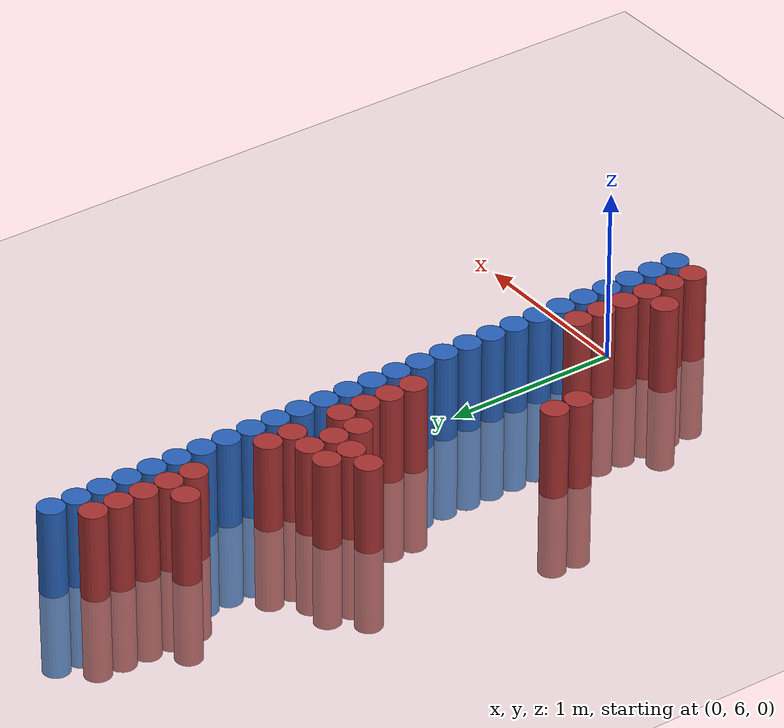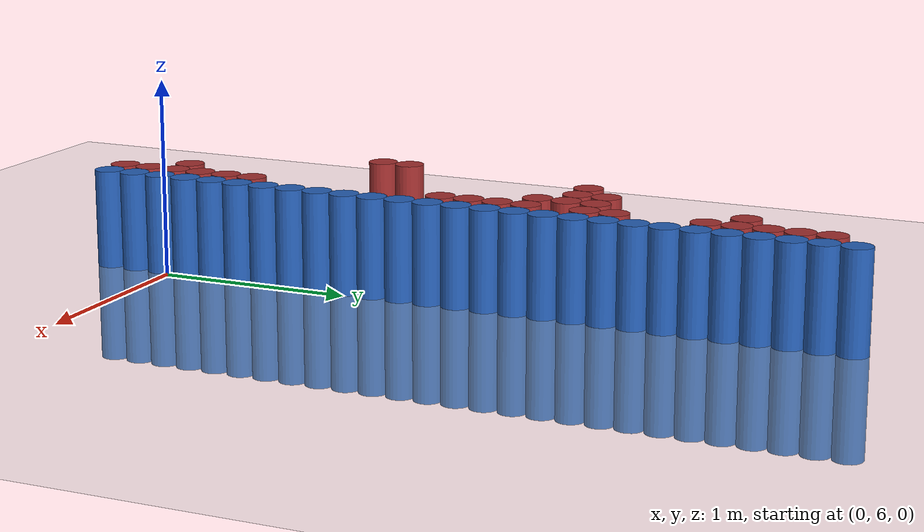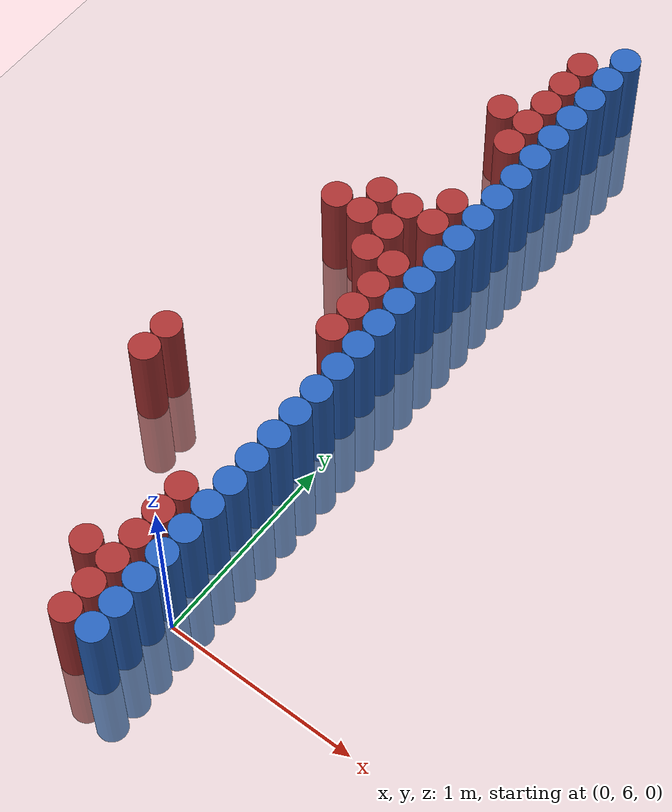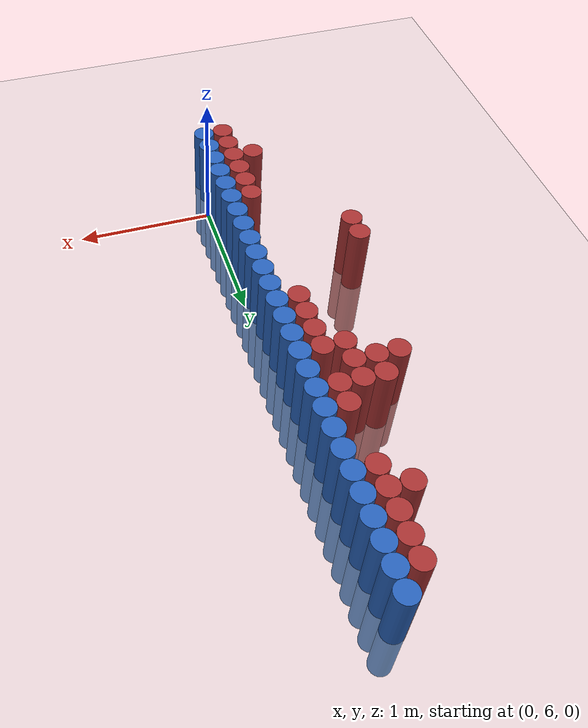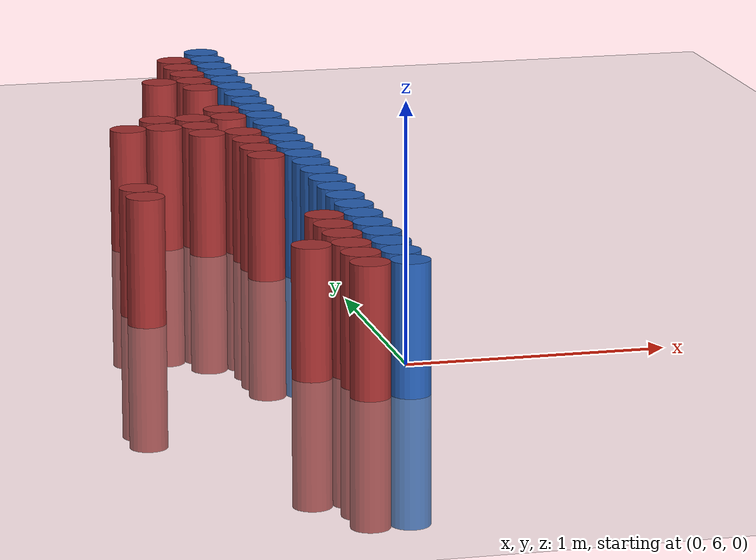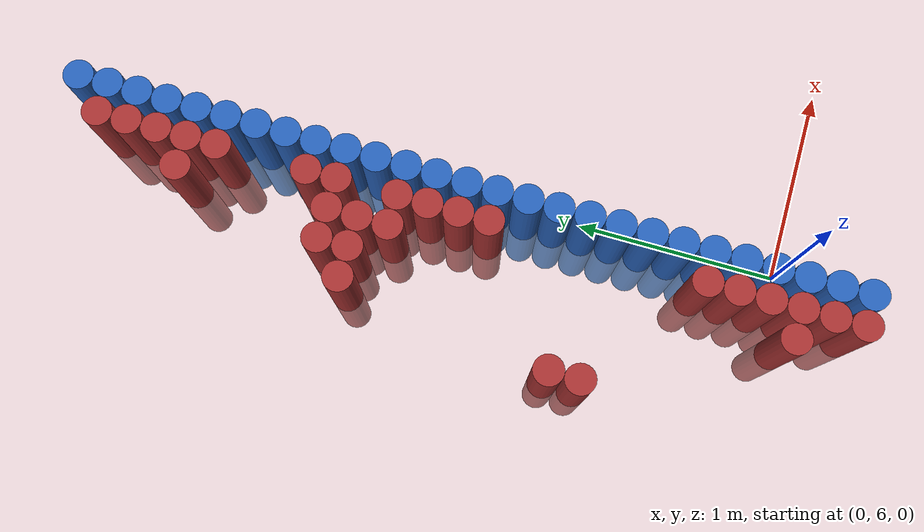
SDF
<sdf version="1.7">
 <world name="default">
  <model name="ground_plane">
   <static>1</static>
   <link name="link">
    <collision name="collision">
     <geometry><plane><normal>0 0 1</normal><size>100 100</size></plane></geometry>
     <surface><friction><ode><mu>100</mu><mu2>50</mu2></ode></friction></surface>
    </collision>
    <visual name="visual">
     <cast_shadows>0</cast_shadows>
     <geometry><plane><normal>0 0 1</normal><size>100 100</size></plane></geometry>
     <material>
      <script><uri>file://media/materials/scripts/gazebo.material</uri><name>Gazebo/Grey</name></script>
     </material>
    </visual>
   </link>
  </model>
  <model name="unit_cylinder_180">
   <static>1</static>
   <pose>-0.825 6.825 0 0 -0 0</pose>
   <link name="link">
    <inertial>
     <mass>1</mass>
     <inertia><ixx>0.145833</ixx><ixy>0</ixy><ixz>0</ixz><iyy>0.145833</iyy><iyz>0</iyz><izz>0.125</izz></inertia>
    </inertial>
    <collision name="collision">
     <geometry><cylinder><radius>0.075</radius><length>1</length></cylinder></geometry>
    </collision>
    <visual name="visual">
     <geometry><cylinder><radius>0.075</radius><length>1</length></cylinder></geometry>
     <material><ambient>0.648 0.192 0.192 1</ambient><diffuse>0.648 0.192 0.192 1</diffuse></material>
     <material>
      <script><name>Gazebo/Grey</name><uri>file://media/materials/scripts/gazebo.material</uri></script>
     </material>
    </visual>
   </link>
  </model>
  <model name="unit_cylinder_181">
   <static>1</static>
   <pose>-0.825 6.975 0 0 -0 0</pose>
   <link name="link">
    <inertial>
     <mass>1</mass>
     <inertia><ixx>0.145833</ixx><ixy>0</ixy><ixz>0</ixz><iyy>0.145833</iyy><iyz>0</iyz><izz>0.125</izz></inertia>
    </inertial>
    <collision name="collision">
     <geometry><cylinder><radius>0.075</radius><length>1</length></cylinder></geometry>
    </collision>
    <visual name="visual">
     <geometry><cylinder><radius>0.075</radius><length>1</length></cylinder></geometry>
     <material><ambient>0.648 0.192 0.192 1</ambient><diffuse>0.648 0.192 0.192 1</diffuse></material>
     <material>
      <script><name>Gazebo/Grey</name><uri>file://media/materials/scripts/gazebo.material</uri></script>
     </material>
    </visual>
   </link>
  </model>
  <model name="unit_cylinder_182">
   <static>1</static>
   <pose>-0.675 8.025 0 0 -0 0</pose>
   <link name="link">
    <inertial>
     <mass>1</mass>
     <inertia><ixx>0.145833</ixx><ixy>0</ixy><ixz>0</ixz><iyy>0.145833</iyy><iyz>0</iyz><izz>0.125</izz></inertia>
    </inertial>
    <collision name="collision">
     <geometry><cylinder><radius>0.075</radius><length>1</length></cylinder></geometry>
    </collision>
    <visual name="visual">
     <geometry><cylinder><radius>0.075</radius><length>1</length></cylinder></geometry>
     <material><ambient>0.648 0.192 0.192 1</ambient><diffuse>0.648 0.192 0.192 1</diffuse></material>
     <material>
      <script><name>Gazebo/Grey</name><uri>file://media/materials/scripts/gazebo.material</uri></script>
     </material>
    </visual>
   </link>
  </model>
  <model name="unit_cylinder_183">
   <static>1</static>
   <pose>-0.525 8.025 0 0 -0 0</pose>
   <link name="link">
    <inertial>
     <mass>1</mass>
     <inertia><ixx>0.145833</ixx><ixy>0</ixy><ixz>0</ixz><iyy>0.145833</iyy><iyz>0</iyz><izz>0.125</izz></inertia>
    </inertial>
    <collision name="collision">
     <geometry><cylinder><radius>0.075</radius><length>1</length></cylinder></geometry>
    </collision>
    <visual name="visual">
     <geometry><cylinder><radius>0.075</radius><length>1</length></cylinder></geometry>
     <material><ambient>0.648 0.192 0.192 1</ambient><diffuse>0.648 0.192 0.192 1</diffuse></material>
     <material>
      <script><name>Gazebo/Grey</name><uri>file://media/materials/scripts/gazebo.material</uri></script>
     </material>
    </visual>
   </link>
  </model>
  <model name="unit_cylinder_184">
   <static>1</static>
   <pose>-0.525 8.175 0 0 -0 0</pose>
   <link name="link">
    <inertial>
     <mass>1</mass>
     <inertia><ixx>0.145833</ixx><ixy>0</ixy><ixz>0</ixz><iyy>0.145833</iyy><iyz>0</iyz><izz>0.125</izz></inertia>
    </inertial>
    <collision name="collision">
     <geometry><cylinder><radius>0.075</radius><length>1</length></cylinder></geometry>
    </collision>
    <visual name="visual">
     <geometry><cylinder><radius>0.075</radius><length>1</length></cylinder></geometry>
     <material><ambient>0.648 0.192 0.192 1</ambient><diffuse>0.648 0.192 0.192 1</diffuse></material>
     <material>
      <script><name>Gazebo/Grey</name><uri>file://media/materials/scripts/gazebo.material</uri></script>
     </material>
    </visual>
   </link>
  </model>
  <model name="unit_cylinder_185">
   <static>1</static>
   <pose>-0.375 5.925 0 0 -0 0</pose>
   <link name="link">
    <inertial>
     <mass>1</mass>
     <inertia><ixx>0.145833</ixx><ixy>0</ixy><ixz>0</ixz><iyy>0.145833</iyy><iyz>0</iyz><izz>0.125</izz></inertia>
    </inertial>
    <collision name="collision">
     <geometry><cylinder><radius>0.075</radius><length>1</length></cylinder></geometry>
    </collision>
    <visual name="visual">
     <geometry><cylinder><radius>0.075</radius><length>1</length></cylinder></geometry>
     <material><ambient>0.648 0.192 0.192 1</ambient><diffuse>0.648 0.192 0.192 1</diffuse></material>
     <material>
      <script><name>Gazebo/Grey</name><uri>file://media/materials/scripts/gazebo.material</uri></script>
     </material>
    </visual>
   </link>
  </model>
  <model name="unit_cylinder_186">
   <static>1</static>
   <pose>-0.375 7.875 0 0 -0 0</pose>
   <link name="link">
    <inertial>
     <mass>1</mass>
     <inertia><ixx>0.145833</ixx><ixy>0</ixy><ixz>0</ixz><iyy>0.145833</iyy><iyz>0</iyz><izz>0.125</izz></inertia>
    </inertial>
    <collision name="collision">
     <geometry><cylinder><radius>0.075</radius><length>1</length></cylinder></geometry>
    </collision>
    <visual name="visual">
     <geometry><cylinder><radius>0.075</radius><length>1</length></cylinder></geometry>
     <material><ambient>0.648 0.192 0.192 1</ambient><diffuse>0.648 0.192 0.192 1</diffuse></material>
     <material>
      <script><name>Gazebo/Grey</name><uri>file://media/materials/scripts/gazebo.material</uri></script>
     </material>
    </visual>
   </link>
  </model>
  <model name="unit_cylinder_187">
   <static>1</static>
   <pose>-0.375 8.025 0 0 -0 0</pose>
   <link name="link">
    <inertial>
     <mass>1</mass>
     <inertia><ixx>0.145833</ixx><ixy>0</ixy><ixz>0</ixz><iyy>0.145833</iyy><iyz>0</iyz><izz>0.125</izz></inertia>
    </inertial>
    <collision name="collision">
     <geometry><cylinder><radius>0.075</radius><length>1</length></cylinder></geometry>
    </collision>
    <visual name="visual">
     <geometry><cylinder><radius>0.075</radius><length>1</length></cylinder></geometry>
     <material><ambient>0.648 0.192 0.192 1</ambient><diffuse>0.648 0.192 0.192 1</diffuse></material>
     <material>
      <script><name>Gazebo/Grey</name><uri>file://media/materials/scripts/gazebo.material</uri></script>
     </material>
    </visual>
   </link>
  </model>
  <model name="unit_cylinder_188">
   <static>1</static>
   <pose>-0.375 8.175 0 0 -0 0</pose>
   <link name="link">
    <inertial>
     <mass>1</mass>
     <inertia><ixx>0.145833</ixx><ixy>0</ixy><ixz>0</ixz><iyy>0.145833</iyy><iyz>0</iyz><izz>0.125</izz></inertia>
    </inertial>
    <collision name="collision">
     <geometry><cylinder><radius>0.075</radius><length>1</length></cylinder></geometry>
    </collision>
    <visual name="visual">
     <geometry><cylinder><radius>0.075</radius><length>1</length></cylinder></geometry>
     <material><ambient>0.648 0.192 0.192 1</ambient><diffuse>0.648 0.192 0.192 1</diffuse></material>
     <material>
      <script><name>Gazebo/Grey</name><uri>file://media/materials/scripts/gazebo.material</uri></script>
     </material>
    </visual>
   </link>
  </model>
  <model name="unit_cylinder_189">
   <static>1</static>
   <pose>-0.375 8.925 0 0 -0 0</pose>
   <link name="link">
    <inertial>
     <mass>1</mass>
     <inertia><ixx>0.145833</ixx><ixy>0</ixy><ixz>0</ixz><iyy>0.145833</iyy><iyz>0</iyz><izz>0.125</izz></inertia>
    </inertial>
    <collision name="collision">
     <geometry><cylinder><radius>0.075</radius><length>1</length></cylinder></geometry>
    </collision>
    <visual name="visual">
     <geometry><cylinder><radius>0.075</radius><length>1</length></cylinder></geometry>
     <material><ambient>0.648 0.192 0.192 1</ambient><diffuse>0.648 0.192 0.192 1</diffuse></material>
     <material>
      <script><name>Gazebo/Grey</name><uri>file://media/materials/scripts/gazebo.material</uri></script>
     </material>
    </visual>
   </link>
  </model>
  <model name="unit_cylinder_190">
   <static>1</static>
   <pose>-0.225 5.625 0 0 -0 0</pose>
   <link name="link">
    <inertial>
     <mass>1</mass>
     <inertia><ixx>0.145833</ixx><ixy>0</ixy><ixz>0</ixz><iyy>0.145833</iyy><iyz>0</iyz><izz>0.125</izz></inertia>
    </inertial>
    <collision name="collision">
     <geometry><cylinder><radius>0.075</radius><length>1</length></cylinder></geometry>
    </collision>
    <visual name="visual">
     <geometry><cylinder><radius>0.075</radius><length>1</length></cylinder></geometry>
     <material><ambient>0.648 0.192 0.192 1</ambient><diffuse>0.648 0.192 0.192 1</diffuse></material>
     <material>
      <script><name>Gazebo/Grey</name><uri>file://media/materials/scripts/gazebo.material</uri></script>
     </material>
    </visual>
   </link>
  </model>
  <model name="unit_cylinder_191">
   <static>1</static>
   <pose>-0.225 5.775 0 0 -0 0</pose>
   <link name="link">
    <inertial>
     <mass>1</mass>
     <inertia><ixx>0.145833</ixx><ixy>0</ixy><ixz>0</ixz><iyy>0.145833</iyy><iyz>0</iyz><izz>0.125</izz></inertia>
    </inertial>
    <collision name="collision">
     <geometry><cylinder><radius>0.075</radius><length>1</length></cylinder></geometry>
    </collision>
    <visual name="visual">
     <geometry><cylinder><radius>0.075</radius><length>1</length></cylinder></geometry>
     <material><ambient>0.648 0.192 0.192 1</ambient><diffuse>0.648 0.192 0.192 1</diffuse></material>
     <material>
      <script><name>Gazebo/Grey</name><uri>file://media/materials/scripts/gazebo.material</uri></script>
     </material>
    </visual>
   </link>
  </model>
  <model name="unit_cylinder_192">
   <static>1</static>
   <pose>-0.225 5.925 0 0 -0 0</pose>
   <link name="link">
    <inertial>
     <mass>1</mass>
     <inertia><ixx>0.145833</ixx><ixy>0</ixy><ixz>0</ixz><iyy>0.145833</iyy><iyz>0</iyz><izz>0.125</izz></inertia>
    </inertial>
    <collision name="collision">
     <geometry><cylinder><radius>0.075</radius><length>1</length></cylinder></geometry>
    </collision>
    <visual name="visual">
     <geometry><cylinder><radius>0.075</radius><length>1</length></cylinder></geometry>
     <material><ambient>0.648 0.192 0.192 1</ambient><diffuse>0.648 0.192 0.192 1</diffuse></material>
     <material>
      <script><name>Gazebo/Grey</name><uri>file://media/materials/scripts/gazebo.material</uri></script>
     </material>
    </visual>
   </link>
  </model>
  <model name="unit_cylinder_193">
   <static>1</static>
   <pose>-0.225 6.075 0 0 -0 0</pose>
   <link name="link">
    <inertial>
     <mass>1</mass>
     <inertia><ixx>0.145833</ixx><ixy>0</ixy><ixz>0</ixz><iyy>0.145833</iyy><iyz>0</iyz><izz>0.125</izz></inertia>
    </inertial>
    <collision name="collision">
     <geometry><cylinder><radius>0.075</radius><length>1</length></cylinder></geometry>
    </collision>
    <visual name="visual">
     <geometry><cylinder><radius>0.075</radius><length>1</length></cylinder></geometry>
     <material><ambient>0.648 0.192 0.192 1</ambient><diffuse>0.648 0.192 0.192 1</diffuse></material>
     <material>
      <script><name>Gazebo/Grey</name><uri>file://media/materials/scripts/gazebo.material</uri></script>
     </material>
    </visual>
   </link>
  </model>
  <model name="unit_cylinder_194">
   <static>1</static>
   <pose>-0.225 6.225 0 0 -0 0</pose>
   <link name="link">
    <inertial>
     <mass>1</mass>
     <inertia><ixx>0.145833</ixx><ixy>0</ixy><ixz>0</ixz><iyy>0.145833</iyy><iyz>0</iyz><izz>0.125</izz></inertia>
    </inertial>
    <collision name="collision">
     <geometry><cylinder><radius>0.075</radius><length>1</length></cylinder></geometry>
    </collision>
    <visual name="visual">
     <geometry><cylinder><radius>0.075</radius><length>1</length></cylinder></geometry>
     <material><ambient>0.648 0.192 0.192 1</ambient><diffuse>0.648 0.192 0.192 1</diffuse></material>
     <material>
      <script><name>Gazebo/Grey</name><uri>file://media/materials/scripts/gazebo.material</uri></script>
     </material>
    </visual>
   </link>
  </model>
  <model name="unit_cylinder_195">
   <static>1</static>
   <pose>-0.225 6.375 0 0 -0 0</pose>
   <link name="link">
    <inertial>
     <mass>1</mass>
     <inertia><ixx>0.145833</ixx><ixy>0</ixy><ixz>0</ixz><iyy>0.145833</iyy><iyz>0</iyz><izz>0.125</izz></inertia>
    </inertial>
    <collision name="collision">
     <geometry><cylinder><radius>0.075</radius><length>1</length></cylinder></geometry>
    </collision>
    <visual name="visual">
     <geometry><cylinder><radius>0.075</radius><length>1</length></cylinder></geometry>
     <material><ambient>0.648 0.192 0.192 1</ambient><diffuse>0.648 0.192 0.192 1</diffuse></material>
     <material>
      <script><name>Gazebo/Grey</name><uri>file://media/materials/scripts/gazebo.material</uri></script>
     </material>
    </visual>
   </link>
  </model>
  <model name="unit_cylinder_196">
   <static>1</static>
   <pose>-0.225 7.425 0 0 -0 0</pose>
   <link name="link">
    <inertial>
     <mass>1</mass>
     <inertia><ixx>0.145833</ixx><ixy>0</ixy><ixz>0</ixz><iyy>0.145833</iyy><iyz>0</iyz><izz>0.125</izz></inertia>
    </inertial>
    <collision name="collision">
     <geometry><cylinder><radius>0.075</radius><length>1</length></cylinder></geometry>
    </collision>
    <visual name="visual">
     <geometry><cylinder><radius>0.075</radius><length>1</length></cylinder></geometry>
     <material><ambient>0.648 0.192 0.192 1</ambient><diffuse>0.648 0.192 0.192 1</diffuse></material>
     <material>
      <script><name>Gazebo/Grey</name><uri>file://media/materials/scripts/gazebo.material</uri></script>
     </material>
    </visual>
   </link>
  </model>
  <model name="unit_cylinder_197">
   <static>1</static>
   <pose>-0.225 7.575 0 0 -0 0</pose>
   <link name="link">
    <inertial>
     <mass>1</mass>
     <inertia><ixx>0.145833</ixx><ixy>0</ixy><ixz>0</ixz><iyy>0.145833</iyy><iyz>0</iyz><izz>0.125</izz></inertia>
    </inertial>
    <collision name="collision">
     <geometry><cylinder><radius>0.075</radius><length>1</length></cylinder></geometry>
    </collision>
    <visual name="visual">
     <geometry><cylinder><radius>0.075</radius><length>1</length></cylinder></geometry>
     <material><ambient>0.648 0.192 0.192 1</ambient><diffuse>0.648 0.192 0.192 1</diffuse></material>
     <material>
      <script><name>Gazebo/Grey</name><uri>file://media/materials/scripts/gazebo.material</uri></script>
     </material>
    </visual>
   </link>
  </model>
  <model name="unit_cylinder_198">
   <static>1</static>
   <pose>-0.225 7.725 0 0 -0 0</pose>
   <link name="link">
    <inertial>
     <mass>1</mass>
     <inertia><ixx>0.145833</ixx><ixy>0</ixy><ixz>0</ixz><iyy>0.145833</iyy><iyz>0</iyz><izz>0.125</izz></inertia>
    </inertial>
    <collision name="collision">
     <geometry><cylinder><radius>0.075</radius><length>1</length></cylinder></geometry>
    </collision>
    <visual name="visual">
     <geometry><cylinder><radius>0.075</radius><length>1</length></cylinder></geometry>
     <material><ambient>0.648 0.192 0.192 1</ambient><diffuse>0.648 0.192 0.192 1</diffuse></material>
     <material>
      <script><name>Gazebo/Grey</name><uri>file://media/materials/scripts/gazebo.material</uri></script>
     </material>
    </visual>
   </link>
  </model>
  <model name="unit_cylinder_199">
   <static>1</static>
   <pose>-0.225 7.875 0 0 -0 0</pose>
   <link name="link">
    <inertial>
     <mass>1</mass>
     <inertia><ixx>0.145833</ixx><ixy>0</ixy><ixz>0</ixz><iyy>0.145833</iyy><iyz>0</iyz><izz>0.125</izz></inertia>
    </inertial>
    <collision name="collision">
     <geometry><cylinder><radius>0.075</radius><length>1</length></cylinder></geometry>
    </collision>
    <visual name="visual">
     <geometry><cylinder><radius>0.075</radius><length>1</length></cylinder></geometry>
     <material><ambient>0.648 0.192 0.192 1</ambient><diffuse>0.648 0.192 0.192 1</diffuse></material>
     <material>
      <script><name>Gazebo/Grey</name><uri>file://media/materials/scripts/gazebo.material</uri></script>
     </material>
    </visual>
   </link>
  </model>
  <model name="unit_cylinder_200">
   <static>1</static>
   <pose>-0.225 8.175 0 0 -0 0</pose>
   <link name="link">
    <inertial>
     <mass>1</mass>
     <inertia><ixx>0.145833</ixx><ixy>0</ixy><ixz>0</ixz><iyy>0.145833</iyy><iyz>0</iyz><izz>0.125</izz></inertia>
    </inertial>
    <collision name="collision">
     <geometry><cylinder><radius>0.075</radius><length>1</length></cylinder></geometry>
    </collision>
    <visual name="visual">
     <geometry><cylinder><radius>0.075</radius><length>1</length></cylinder></geometry>
     <material><ambient>0.648 0.192 0.192 1</ambient><diffuse>0.648 0.192 0.192 1</diffuse></material>
     <material>
      <script><name>Gazebo/Grey</name><uri>file://media/materials/scripts/gazebo.material</uri></script>
     </material>
    </visual>
   </link>
  </model>
  <model name="unit_cylinder_201">
   <static>1</static>
   <pose>-0.225 8.325 0 0 -0 0</pose>
   <link name="link">
    <inertial>
     <mass>1</mass>
     <inertia><ixx>0.145833</ixx><ixy>0</ixy><ixz>0</ixz><iyy>0.145833</iyy><iyz>0</iyz><izz>0.125</izz></inertia>
    </inertial>
    <collision name="collision">
     <geometry><cylinder><radius>0.075</radius><length>1</length></cylinder></geometry>
    </collision>
    <visual name="visual">
     <geometry><cylinder><radius>0.075</radius><length>1</length></cylinder></geometry>
     <material><ambient>0.648 0.192 0.192 1</ambient><diffuse>0.648 0.192 0.192 1</diffuse></material>
     <material>
      <script><name>Gazebo/Grey</name><uri>file://media/materials/scripts/gazebo.material</uri></script>
     </material>
    </visual>
   </link>
  </model>
  <model name="unit_cylinder_202">
   <static>1</static>
   <pose>-0.225 8.775 0 0 -0 0</pose>
   <link name="link">
    <inertial>
     <mass>1</mass>
     <inertia><ixx>0.145833</ixx><ixy>0</ixy><ixz>0</ixz><iyy>0.145833</iyy><iyz>0</iyz><izz>0.125</izz></inertia>
    </inertial>
    <collision name="collision">
     <geometry><cylinder><radius>0.075</radius><length>1</length></cylinder></geometry>
    </collision>
    <visual name="visual">
     <geometry><cylinder><radius>0.075</radius><length>1</length></cylinder></geometry>
     <material><ambient>0.648 0.192 0.192 1</ambient><diffuse>0.648 0.192 0.192 1</diffuse></material>
     <material>
      <script><name>Gazebo/Grey</name><uri>file://media/materials/scripts/gazebo.material</uri></script>
     </material>
    </visual>
   </link>
  </model>
  <model name="unit_cylinder_203">
   <static>1</static>
   <pose>-0.225 8.925 0 0 -0 0</pose>
   <link name="link">
    <inertial>
     <mass>1</mass>
     <inertia><ixx>0.145833</ixx><ixy>0</ixy><ixz>0</ixz><iyy>0.145833</iyy><iyz>0</iyz><izz>0.125</izz></inertia>
    </inertial>
    <collision name="collision">
     <geometry><cylinder><radius>0.075</radius><length>1</length></cylinder></geometry>
    </collision>
    <visual name="visual">
     <geometry><cylinder><radius>0.075</radius><length>1</length></cylinder></geometry>
     <material><ambient>0.648 0.192 0.192 1</ambient><diffuse>0.648 0.192 0.192 1</diffuse></material>
     <material>
      <script><name>Gazebo/Grey</name><uri>file://media/materials/scripts/gazebo.material</uri></script>
     </material>
    </visual>
   </link>
  </model>
  <model name="unit_cylinder_204">
   <static>1</static>
   <pose>-0.225 9.075 0 0 -0 0</pose>
   <link name="link">
    <inertial>
     <mass>1</mass>
     <inertia><ixx>0.145833</ixx><ixy>0</ixy><ixz>0</ixz><iyy>0.145833</iyy><iyz>0</iyz><izz>0.125</izz></inertia>
    </inertial>
    <collision name="collision">
     <geometry><cylinder><radius>0.075</radius><length>1</length></cylinder></geometry>
    </collision>
    <visual name="visual">
     <geometry><cylinder><radius>0.075</radius><length>1</length></cylinder></geometry>
     <material><ambient>0.648 0.192 0.192 1</ambient><diffuse>0.648 0.192 0.192 1</diffuse></material>
     <material>
      <script><name>Gazebo/Grey</name><uri>file://media/materials/scripts/gazebo.material</uri></script>
     </material>
    </visual>
   </link>
  </model>
  <model name="unit_cylinder_205">
   <static>1</static>
   <pose>-0.225 9.225 0 0 -0 0</pose>
   <link name="link">
    <inertial>
     <mass>1</mass>
     <inertia><ixx>0.145833</ixx><ixy>0</ixy><ixz>0</ixz><iyy>0.145833</iyy><iyz>0</iyz><izz>0.125</izz></inertia>
    </inertial>
    <collision name="collision">
     <geometry><cylinder><radius>0.075</radius><length>1</length></cylinder></geometry>
    </collision>
    <visual name="visual">
     <geometry><cylinder><radius>0.075</radius><length>1</length></cylinder></geometry>
     <material><ambient>0.648 0.192 0.192 1</ambient><diffuse>0.648 0.192 0.192 1</diffuse></material>
     <material>
      <script><name>Gazebo/Grey</name><uri>file://media/materials/scripts/gazebo.material</uri></script>
     </material>
    </visual>
   </link>
  </model>
  <model name="unit_cylinder_206">
   <static>1</static>
   <pose>-0.225 9.375 0 0 -0 0</pose>
   <link name="link">
    <inertial>
     <mass>1</mass>
     <inertia><ixx>0.145833</ixx><ixy>0</ixy><ixz>0</ixz><iyy>0.145833</iyy><iyz>0</iyz><izz>0.125</izz></inertia>
    </inertial>
    <collision name="collision">
     <geometry><cylinder><radius>0.075</radius><length>1</length></cylinder></geometry>
    </collision>
    <visual name="visual">
     <geometry><cylinder><radius>0.075</radius><length>1</length></cylinder></geometry>
     <material><ambient>0.648 0.192 0.192 1</ambient><diffuse>0.648 0.192 0.192 1</diffuse></material>
     <material>
      <script><name>Gazebo/Grey</name><uri>file://media/materials/scripts/gazebo.material</uri></script>
     </material>
    </visual>
   </link>
  </model>
  <model name="unit_cylinder_210">
   <static>1</static>
   <pose>-0.075 5.625 0 0 -0 0</pose>
   <link name="link">
    <inertial>
     <mass>1</mass>
     <inertia><ixx>0.145833</ixx><ixy>0</ixy><ixz>0</ixz><iyy>0.145833</iyy><iyz>0</iyz><izz>0.125</izz></inertia>
    </inertial>
    <collision name="collision">
     <geometry><cylinder><radius>0.075</radius><length>1</length></cylinder></geometry>
    </collision>
    <visual name="visual">
     <geometry><cylinder><radius>0.075</radius><length>1</length></cylinder></geometry>
     <material><ambient>0.152 0.379 0.72 1</ambient><diffuse>0.152 0.379 0.72 1</diffuse></material>
     <material>
      <script><name>Gazebo/Grey</name><uri>file://media/materials/scripts/gazebo.material</uri></script>
     </material>
    </visual>
   </link>
  </model>
  <model name="unit_cylinder_211">
   <static>1</static>
   <pose>-0.075 5.775 0 0 -0 0</pose>
   <link name="link">
    <inertial>
     <mass>1</mass>
     <inertia><ixx>0.145833</ixx><ixy>0</ixy><ixz>0</ixz><iyy>0.145833</iyy><iyz>0</iyz><izz>0.125</izz></inertia>
    </inertial>
    <collision name="collision">
     <geometry><cylinder><radius>0.075</radius><length>1</length></cylinder></geometry>
    </collision>
    <visual name="visual">
     <geometry><cylinder><radius>0.075</radius><length>1</length></cylinder></geometry>
     <material><ambient>0.152 0.379 0.72 1</ambient><diffuse>0.152 0.379 0.72 1</diffuse></material>
     <material>
      <script><name>Gazebo/Grey</name><uri>file://media/materials/scripts/gazebo.material</uri></script>
     </material>
    </visual>
   </link>
  </model>
  <model name="unit_cylinder_212">
   <static>1</static>
   <pose>-0.075 5.925 0 0 -0 0</pose>
   <link name="link">
    <inertial>
     <mass>1</mass>
     <inertia><ixx>0.145833</ixx><ixy>0</ixy><ixz>0</ixz><iyy>0.145833</iyy><iyz>0</iyz><izz>0.125</izz></inertia>
    </inertial>
    <collision name="collision">
     <geometry><cylinder><radius>0.075</radius><length>1</length></cylinder></geometry>
    </collision>
    <visual name="visual">
     <geometry><cylinder><radius>0.075</radius><length>1</length></cylinder></geometry>
     <material><ambient>0.152 0.379 0.72 1</ambient><diffuse>0.152 0.379 0.72 1</diffuse></material>
     <material>
      <script><name>Gazebo/Grey</name><uri>file://media/materials/scripts/gazebo.material</uri></script>
     </material>
    </visual>
   </link>
  </model>
  <model name="unit_cylinder_213">
   <static>1</static>
   <pose>-0.075 6.075 0 0 -0 0</pose>
   <link name="link">
    <inertial>
     <mass>1</mass>
     <inertia><ixx>0.145833</ixx><ixy>0</ixy><ixz>0</ixz><iyy>0.145833</iyy><iyz>0</iyz><izz>0.125</izz></inertia>
    </inertial>
    <collision name="collision">
     <geometry><cylinder><radius>0.075</radius><length>1</length></cylinder></geometry>
    </collision>
    <visual name="visual">
     <geometry><cylinder><radius>0.075</radius><length>1</length></cylinder></geometry>
     <material><ambient>0.152 0.379 0.72 1</ambient><diffuse>0.152 0.379 0.72 1</diffuse></material>
     <material>
      <script><name>Gazebo/Grey</name><uri>file://media/materials/scripts/gazebo.material</uri></script>
     </material>
    </visual>
   </link>
  </model>
  <model name="unit_cylinder_214">
   <static>1</static>
   <pose>-0.075 6.225 0 0 -0 0</pose>
   <link name="link">
    <inertial>
     <mass>1</mass>
     <inertia><ixx>0.145833</ixx><ixy>0</ixy><ixz>0</ixz><iyy>0.145833</iyy><iyz>0</iyz><izz>0.125</izz></inertia>
    </inertial>
    <collision name="collision">
     <geometry><cylinder><radius>0.075</radius><length>1</length></cylinder></geometry>
    </collision>
    <visual name="visual">
     <geometry><cylinder><radius>0.075</radius><length>1</length></cylinder></geometry>
     <material><ambient>0.152 0.379 0.72 1</ambient><diffuse>0.152 0.379 0.72 1</diffuse></material>
     <material>
      <script><name>Gazebo/Grey</name><uri>file://media/materials/scripts/gazebo.material</uri></script>
     </material>
    </visual>
   </link>
  </model>
  <model name="unit_cylinder_215">
   <static>1</static>
   <pose>-0.075 6.375 0 0 -0 0</pose>
   <link name="link">
    <inertial>
     <mass>1</mass>
     <inertia><ixx>0.145833</ixx><ixy>0</ixy><ixz>0</ixz><iyy>0.145833</iyy><iyz>0</iyz><izz>0.125</izz></inertia>
    </inertial>
    <collision name="collision">
     <geometry><cylinder><radius>0.075</radius><length>1</length></cylinder></geometry>
    </collision>
    <visual name="visual">
     <geometry><cylinder><radius>0.075</radius><length>1</length></cylinder></geometry>
     <material><ambient>0.152 0.379 0.72 1</ambient><diffuse>0.152 0.379 0.72 1</diffuse></material>
     <material>
      <script><name>Gazebo/Grey</name><uri>file://media/materials/scripts/gazebo.material</uri></script>
     </material>
    </visual>
   </link>
  </model>
  <model name="unit_cylinder_216">
   <static>1</static>
   <pose>-0.075 6.525 0 0 -0 0</pose>
   <link name="link">
    <inertial>
     <mass>1</mass>
     <inertia><ixx>0.145833</ixx><ixy>0</ixy><ixz>0</ixz><iyy>0.145833</iyy><iyz>0</iyz><izz>0.125</izz></inertia>
    </inertial>
    <collision name="collision">
     <geometry><cylinder><radius>0.075</radius><length>1</length></cylinder></geometry>
    </collision>
    <visual name="visual">
     <geometry><cylinder><radius>0.075</radius><length>1</length></cylinder></geometry>
     <material><ambient>0.152 0.379 0.72 1</ambient><diffuse>0.152 0.379 0.72 1</diffuse></material>
     <material>
      <script><name>Gazebo/Grey</name><uri>file://media/materials/scripts/gazebo.material</uri></script>
     </material>
    </visual>
   </link>
  </model>
  <model name="unit_cylinder_217">
   <static>1</static>
   <pose>-0.075 6.675 0 0 -0 0</pose>
   <link name="link">
    <inertial>
     <mass>1</mass>
     <inertia><ixx>0.145833</ixx><ixy>0</ixy><ixz>0</ixz><iyy>0.145833</iyy><iyz>0</iyz><izz>0.125</izz></inertia>
    </inertial>
    <collision name="collision">
     <geometry><cylinder><radius>0.075</radius><length>1</length></cylinder></geometry>
    </collision>
    <visual name="visual">
     <geometry><cylinder><radius>0.075</radius><length>1</length></cylinder></geometry>
     <material><ambient>0.152 0.379 0.72 1</ambient><diffuse>0.152 0.379 0.72 1</diffuse></material>
     <material>
      <script><name>Gazebo/Grey</name><uri>file://media/materials/scripts/gazebo.material</uri></script>
     </material>
    </visual>
   </link>
  </model>
  <model name="unit_cylinder_218">
   <static>1</static>
   <pose>-0.075 6.825 0 0 -0 0</pose>
   <link name="link">
    <inertial>
     <mass>1</mass>
     <inertia><ixx>0.145833</ixx><ixy>0</ixy><ixz>0</ixz><iyy>0.145833</iyy><iyz>0</iyz><izz>0.125</izz></inertia>
    </inertial>
    <collision name="collision">
     <geometry><cylinder><radius>0.075</radius><length>1</length></cylinder></geometry>
    </collision>
    <visual name="visual">
     <geometry><cylinder><radius>0.075</radius><length>1</length></cylinder></geometry>
     <material><ambient>0.152 0.379 0.72 1</ambient><diffuse>0.152 0.379 0.72 1</diffuse></material>
     <material>
      <script><name>Gazebo/Grey</name><uri>file://media/materials/scripts/gazebo.material</uri></script>
     </material>
    </visual>
   </link>
  </model>
  <model name="unit_cylinder_219">
   <static>1</static>
   <pose>-0.075 6.975 0 0 -0 0</pose>
   <link name="link">
    <inertial>
     <mass>1</mass>
     <inertia><ixx>0.145833</ixx><ixy>0</ixy><ixz>0</ixz><iyy>0.145833</iyy><iyz>0</iyz><izz>0.125</izz></inertia>
    </inertial>
    <collision name="collision">
     <geometry><cylinder><radius>0.075</radius><length>1</length></cylinder></geometry>
    </collision>
    <visual name="visual">
     <geometry><cylinder><radius>0.075</radius><length>1</length></cylinder></geometry>
     <material><ambient>0.152 0.379 0.72 1</ambient><diffuse>0.152 0.379 0.72 1</diffuse></material>
     <material>
      <script><name>Gazebo/Grey</name><uri>file://media/materials/scripts/gazebo.material</uri></script>
     </material>
    </visual>
   </link>
  </model>
  <model name="unit_cylinder_220">
   <static>1</static>
   <pose>-0.075 7.125 0 0 -0 0</pose>
   <link name="link">
    <inertial>
     <mass>1</mass>
     <inertia><ixx>0.145833</ixx><ixy>0</ixy><ixz>0</ixz><iyy>0.145833</iyy><iyz>0</iyz><izz>0.125</izz></inertia>
    </inertial>
    <collision name="collision">
     <geometry><cylinder><radius>0.075</radius><length>1</length></cylinder></geometry>
    </collision>
    <visual name="visual">
     <geometry><cylinder><radius>0.075</radius><length>1</length></cylinder></geometry>
     <material><ambient>0.152 0.379 0.72 1</ambient><diffuse>0.152 0.379 0.72 1</diffuse></material>
     <material>
      <script><name>Gazebo/Grey</name><uri>file://media/materials/scripts/gazebo.material</uri></script>
     </material>
    </visual>
   </link>
  </model>
  <model name="unit_cylinder_221">
   <static>1</static>
   <pose>-0.075 7.275 0 0 -0 0</pose>
   <link name="link">
    <inertial>
     <mass>1</mass>
     <inertia><ixx>0.145833</ixx><ixy>0</ixy><ixz>0</ixz><iyy>0.145833</iyy><iyz>0</iyz><izz>0.125</izz></inertia>
    </inertial>
    <collision name="collision">
     <geometry><cylinder><radius>0.075</radius><length>1</length></cylinder></geometry>
    </collision>
    <visual name="visual">
     <geometry><cylinder><radius>0.075</radius><length>1</length></cylinder></geometry>
     <material><ambient>0.152 0.379 0.72 1</ambient><diffuse>0.152 0.379 0.72 1</diffuse></material>
     <material>
      <script><name>Gazebo/Grey</name><uri>file://media/materials/scripts/gazebo.material</uri></script>
     </material>
    </visual>
   </link>
  </model>
  <model name="unit_cylinder_222">
   <static>1</static>
   <pose>-0.075 7.425 0 0 -0 0</pose>
   <link name="link">
    <inertial>
     <mass>1</mass>
     <inertia><ixx>0.145833</ixx><ixy>0</ixy><ixz>0</ixz><iyy>0.145833</iyy><iyz>0</iyz><izz>0.125</izz></inertia>
    </inertial>
    <collision name="collision">
     <geometry><cylinder><radius>0.075</radius><length>1</length></cylinder></geometry>
    </collision>
    <visual name="visual">
     <geometry><cylinder><radius>0.075</radius><length>1</length></cylinder></geometry>
     <material><ambient>0.152 0.379 0.72 1</ambient><diffuse>0.152 0.379 0.72 1</diffuse></material>
     <material>
      <script><name>Gazebo/Grey</name><uri>file://media/materials/scripts/gazebo.material</uri></script>
     </material>
    </visual>
   </link>
  </model>
  <model name="unit_cylinder_223">
   <static>1</static>
   <pose>-0.075 7.575 0 0 -0 0</pose>
   <link name="link">
    <inertial>
     <mass>1</mass>
     <inertia><ixx>0.145833</ixx><ixy>0</ixy><ixz>0</ixz><iyy>0.145833</iyy><iyz>0</iyz><izz>0.125</izz></inertia>
    </inertial>
    <collision name="collision">
     <geometry><cylinder><radius>0.075</radius><length>1</length></cylinder></geometry>
    </collision>
    <visual name="visual">
     <geometry><cylinder><radius>0.075</radius><length>1</length></cylinder></geometry>
     <material><ambient>0.152 0.379 0.72 1</ambient><diffuse>0.152 0.379 0.72 1</diffuse></material>
     <material>
      <script><name>Gazebo/Grey</name><uri>file://media/materials/scripts/gazebo.material</uri></script>
     </material>
    </visual>
   </link>
  </model>
  <model name="unit_cylinder_224">
   <static>1</static>
   <pose>-0.075 7.725 0 0 -0 0</pose>
   <link name="link">
    <inertial>
     <mass>1</mass>
     <inertia><ixx>0.145833</ixx><ixy>0</ixy><ixz>0</ixz><iyy>0.145833</iyy><iyz>0</iyz><izz>0.125</izz></inertia>
    </inertial>
    <collision name="collision">
     <geometry><cylinder><radius>0.075</radius><length>1</length></cylinder></geometry>
    </collision>
    <visual name="visual">
     <geometry><cylinder><radius>0.075</radius><length>1</length></cylinder></geometry>
     <material><ambient>0.152 0.379 0.72 1</ambient><diffuse>0.152 0.379 0.72 1</diffuse></material>
     <material>
      <script><name>Gazebo/Grey</name><uri>file://media/materials/scripts/gazebo.material</uri></script>
     </material>
    </visual>
   </link>
  </model>
  <model name="unit_cylinder_225">
   <static>1</static>
   <pose>-0.075 7.875 0 0 -0 0</pose>
   <link name="link">
    <inertial>
     <mass>1</mass>
     <inertia><ixx>0.145833</ixx><ixy>0</ixy><ixz>0</ixz><iyy>0.145833</iyy><iyz>0</iyz><izz>0.125</izz></inertia>
    </inertial>
    <collision name="collision">
     <geometry><cylinder><radius>0.075</radius><length>1</length></cylinder></geometry>
    </collision>
    <visual name="visual">
     <geometry><cylinder><radius>0.075</radius><length>1</length></cylinder></geometry>
     <material><ambient>0.152 0.379 0.72 1</ambient><diffuse>0.152 0.379 0.72 1</diffuse></material>
     <material>
      <script><name>Gazebo/Grey</name><uri>file://media/materials/scripts/gazebo.material</uri></script>
     </material>
    </visual>
   </link>
  </model>
  <model name="unit_cylinder_226">
   <static>1</static>
   <pose>-0.075 8.025 0 0 -0 0</pose>
   <link name="link">
    <inertial>
     <mass>1</mass>
     <inertia><ixx>0.145833</ixx><ixy>0</ixy><ixz>0</ixz><iyy>0.145833</iyy><iyz>0</iyz><izz>0.125</izz></inertia>
    </inertial>
    <collision name="collision">
     <geometry><cylinder><radius>0.075</radius><length>1</length></cylinder></geometry>
    </collision>
    <visual name="visual">
     <geometry><cylinder><radius>0.075</radius><length>1</length></cylinder></geometry>
     <material><ambient>0.152 0.379 0.72 1</ambient><diffuse>0.152 0.379 0.72 1</diffuse></material>
     <material>
      <script><name>Gazebo/Grey</name><uri>file://media/materials/scripts/gazebo.material</uri></script>
     </material>
    </visual>
   </link>
  </model>
  <model name="unit_cylinder_227">
   <static>1</static>
   <pose>-0.075 8.175 0 0 -0 0</pose>
   <link name="link">
    <inertial>
     <mass>1</mass>
     <inertia><ixx>0.145833</ixx><ixy>0</ixy><ixz>0</ixz><iyy>0.145833</iyy><iyz>0</iyz><izz>0.125</izz></inertia>
    </inertial>
    <collision name="collision">
     <geometry><cylinder><radius>0.075</radius><length>1</length></cylinder></geometry>
    </collision>
    <visual name="visual">
     <geometry><cylinder><radius>0.075</radius><length>1</length></cylinder></geometry>
     <material><ambient>0.152 0.379 0.72 1</ambient><diffuse>0.152 0.379 0.72 1</diffuse></material>
     <material>
      <script><name>Gazebo/Grey</name><uri>file://media/materials/scripts/gazebo.material</uri></script>
     </material>
    </visual>
   </link>
  </model>
  <model name="unit_cylinder_228">
   <static>1</static>
   <pose>-0.075 8.325 0 0 -0 0</pose>
   <link name="link">
    <inertial>
     <mass>1</mass>
     <inertia><ixx>0.145833</ixx><ixy>0</ixy><ixz>0</ixz><iyy>0.145833</iyy><iyz>0</iyz><izz>0.125</izz></inertia>
    </inertial>
    <collision name="collision">
     <geometry><cylinder><radius>0.075</radius><length>1</length></cylinder></geometry>
    </collision>
    <visual name="visual">
     <geometry><cylinder><radius>0.075</radius><length>1</length></cylinder></geometry>
     <material><ambient>0.152 0.379 0.72 1</ambient><diffuse>0.152 0.379 0.72 1</diffuse></material>
     <material>
      <script><name>Gazebo/Grey</name><uri>file://media/materials/scripts/gazebo.material</uri></script>
     </material>
    </visual>
   </link>
  </model>
  <model name="unit_cylinder_229">
   <static>1</static>
   <pose>-0.075 8.475 0 0 -0 0</pose>
   <link name="link">
    <inertial>
     <mass>1</mass>
     <inertia><ixx>0.145833</ixx><ixy>0</ixy><ixz>0</ixz><iyy>0.145833</iyy><iyz>0</iyz><izz>0.125</izz></inertia>
    </inertial>
    <collision name="collision">
     <geometry><cylinder><radius>0.075</radius><length>1</length></cylinder></geometry>
    </collision>
    <visual name="visual">
     <geometry><cylinder><radius>0.075</radius><length>1</length></cylinder></geometry>
     <material><ambient>0.152 0.379 0.72 1</ambient><diffuse>0.152 0.379 0.72 1</diffuse></material>
     <material>
      <script><name>Gazebo/Grey</name><uri>file://media/materials/scripts/gazebo.material</uri></script>
     </material>
    </visual>
   </link>
  </model>
  <model name="unit_cylinder_230">
   <static>1</static>
   <pose>-0.075 8.625 0 0 -0 0</pose>
   <link name="link">
    <inertial>
     <mass>1</mass>
     <inertia><ixx>0.145833</ixx><ixy>0</ixy><ixz>0</ixz><iyy>0.145833</iyy><iyz>0</iyz><izz>0.125</izz></inertia>
    </inertial>
    <collision name="collision">
     <geometry><cylinder><radius>0.075</radius><length>1</length></cylinder></geometry>
    </collision>
    <visual name="visual">
     <geometry><cylinder><radius>0.075</radius><length>1</length></cylinder></geometry>
     <material><ambient>0.152 0.379 0.72 1</ambient><diffuse>0.152 0.379 0.72 1</diffuse></material>
     <material>
      <script><name>Gazebo/Grey</name><uri>file://media/materials/scripts/gazebo.material</uri></script>
     </material>
    </visual>
   </link>
  </model>
  <model name="unit_cylinder_231">
   <static>1</static>
   <pose>-0.075 8.775 0 0 -0 0</pose>
   <link name="link">
    <inertial>
     <mass>1</mass>
     <inertia><ixx>0.145833</ixx><ixy>0</ixy><ixz>0</ixz><iyy>0.145833</iyy><iyz>0</iyz><izz>0.125</izz></inertia>
    </inertial>
    <collision name="collision">
     <geometry><cylinder><radius>0.075</radius><length>1</length></cylinder></geometry>
    </collision>
    <visual name="visual">
     <geometry><cylinder><radius>0.075</radius><length>1</length></cylinder></geometry>
     <material><ambient>0.152 0.379 0.72 1</ambient><diffuse>0.152 0.379 0.72 1</diffuse></material>
     <material>
      <script><name>Gazebo/Grey</name><uri>file://media/materials/scripts/gazebo.material</uri></script>
     </material>
    </visual>
   </link>
  </model>
  <model name="unit_cylinder_232">
   <static>1</static>
   <pose>-0.075 8.925 0 0 -0 0</pose>
   <link name="link">
    <inertial>
     <mass>1</mass>
     <inertia><ixx>0.145833</ixx><ixy>0</ixy><ixz>0</ixz><iyy>0.145833</iyy><iyz>0</iyz><izz>0.125</izz></inertia>
    </inertial>
    <collision name="collision">
     <geometry><cylinder><radius>0.075</radius><length>1</length></cylinder></geometry>
    </collision>
    <visual name="visual">
     <geometry><cylinder><radius>0.075</radius><length>1</length></cylinder></geometry>
     <material><ambient>0.152 0.379 0.72 1</ambient><diffuse>0.152 0.379 0.72 1</diffuse></material>
     <material>
      <script><name>Gazebo/Grey</name><uri>file://media/materials/scripts/gazebo.material</uri></script>
     </material>
    </visual>
   </link>
  </model>
  <model name="unit_cylinder_233">
   <static>1</static>
   <pose>-0.075 9.075 0 0 -0 0</pose>
   <link name="link">
    <inertial>
     <mass>1</mass>
     <inertia><ixx>0.145833</ixx><ixy>0</ixy><ixz>0</ixz><iyy>0.145833</iyy><iyz>0</iyz><izz>0.125</izz></inertia>
    </inertial>
    <collision name="collision">
     <geometry><cylinder><radius>0.075</radius><length>1</length></cylinder></geometry>
    </collision>
    <visual name="visual">
     <geometry><cylinder><radius>0.075</radius><length>1</length></cylinder></geometry>
     <material><ambient>0.152 0.379 0.72 1</ambient><diffuse>0.152 0.379 0.72 1</diffuse></material>
     <material>
      <script><name>Gazebo/Grey</name><uri>file://media/materials/scripts/gazebo.material</uri></script>
     </material>
    </visual>
   </link>
  </model>
  <model name="unit_cylinder_234">
   <static>1</static>
   <pose>-0.075 9.225 0 0 -0 0</pose>
   <link name="link">
    <inertial>
     <mass>1</mass>
     <inertia><ixx>0.145833</ixx><ixy>0</ixy><ixz>0</ixz><iyy>0.145833</iyy><iyz>0</iyz><izz>0.125</izz></inertia>
    </inertial>
    <collision name="collision">
     <geometry><cylinder><radius>0.075</radius><length>1</length></cylinder></geometry>
    </collision>
    <visual name="visual">
     <geometry><cylinder><radius>0.075</radius><length>1</length></cylinder></geometry>
     <material><ambient>0.152 0.379 0.72 1</ambient><diffuse>0.152 0.379 0.72 1</diffuse></material>
     <material>
      <script><name>Gazebo/Grey</name><uri>file://media/materials/scripts/gazebo.material</uri></script>
     </material>
    </visual>
   </link>
  </model>
  <model name="unit_cylinder_235">
   <static>1</static>
   <pose>-0.075 9.375 0 0 -0 0</pose>
   <link name="link">
    <inertial>
     <mass>1</mass>
     <inertia><ixx>0.145833</ixx><ixy>0</ixy><ixz>0</ixz><iyy>0.145833</iyy><iyz>0</iyz><izz>0.125</izz></inertia>
    </inertial>
    <collision name="collision">
     <geometry><cylinder><radius>0.075</radius><length>1</length></cylinder></geometry>
    </collision>
    <visual name="visual">
     <geometry><cylinder><radius>0.075</radius><length>1</length></cylinder></geometry>
     <material><ambient>0.152 0.379 0.72 1</ambient><diffuse>0.152 0.379 0.72 1</diffuse></material>
     <material>
      <script><name>Gazebo/Grey</name><uri>file://media/materials/scripts/gazebo.material</uri></script>
     </material>
    </visual>
   </link>
  </model>
  <model name="unit_cylinder_236">
   <static>1</static>
   <pose>-0.075 9.525 0 0 -0 0</pose>
   <link name="link">
    <inertial>
     <mass>1</mass>
     <inertia><ixx>0.145833</ixx><ixy>0</ixy><ixz>0</ixz><iyy>0.145833</iyy><iyz>0</iyz><izz>0.125</izz></inertia>
    </inertial>
    <collision name="collision">
     <geometry><cylinder><radius>0.075</radius><length>1</length></cylinder></geometry>
    </collision>
    <visual name="visual">
     <geometry><cylinder><radius>0.075</radius><length>1</length></cylinder></geometry>
     <material><ambient>0.152 0.379 0.72 1</ambient><diffuse>0.152 0.379 0.72 1</diffuse></material>
     <material>
      <script><name>Gazebo/Grey</name><uri>file://media/materials/scripts/gazebo.material</uri></script>
     </material>
    </visual>
   </link>
  </model>
 </world>
</sdf>
